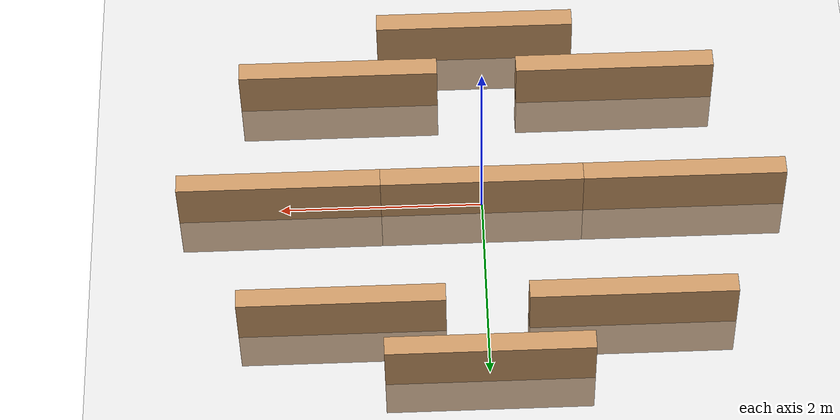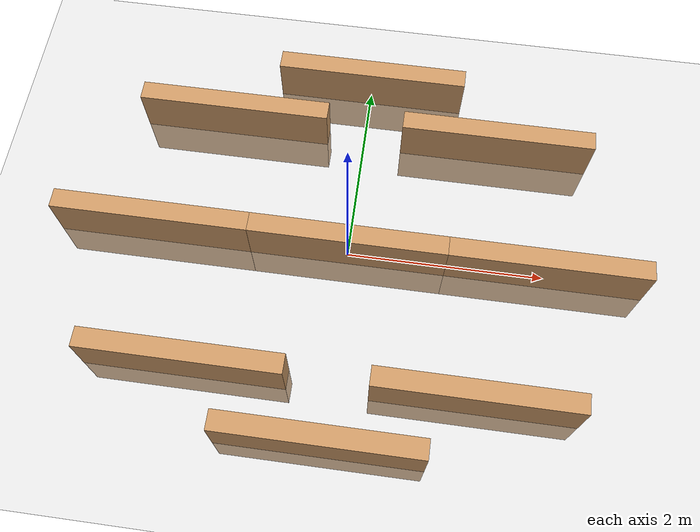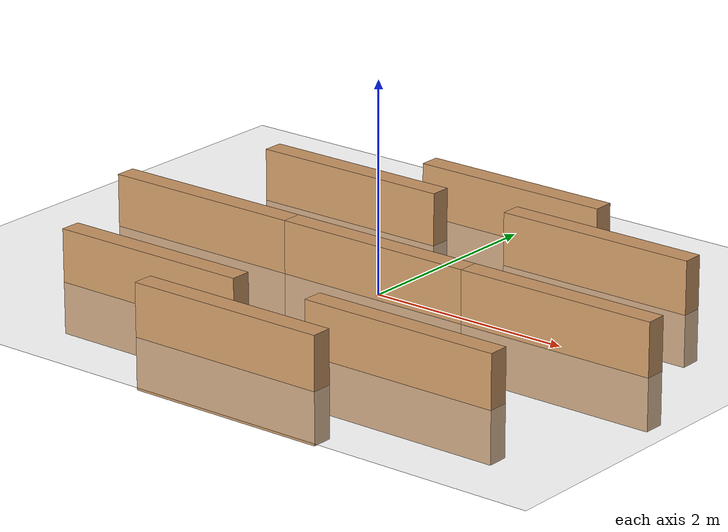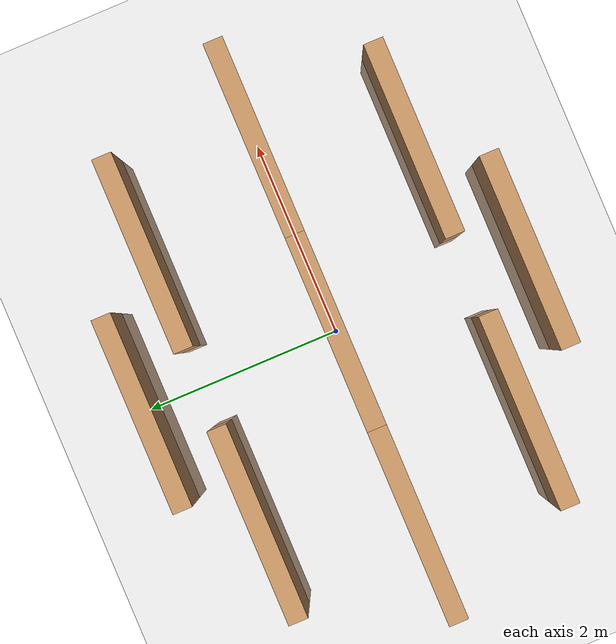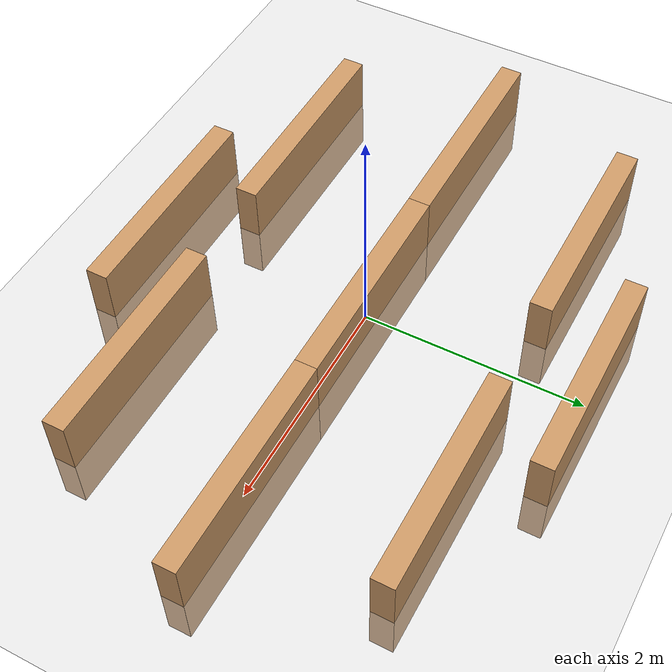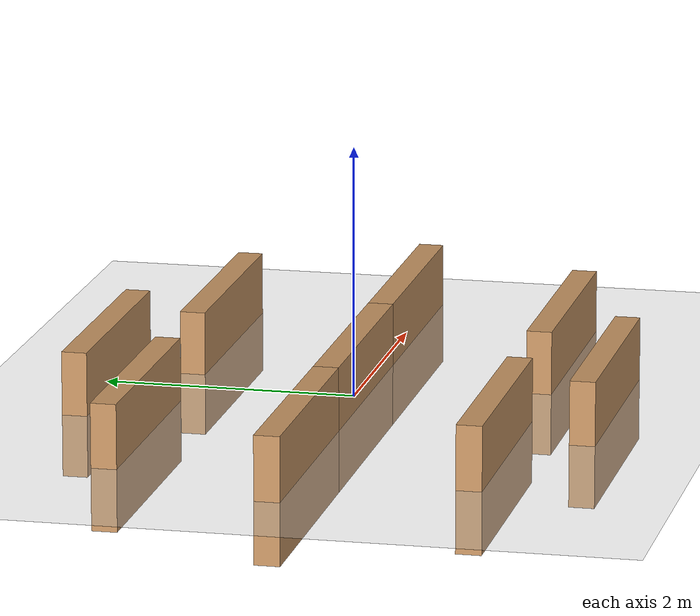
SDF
<?xml version="1.0"?>
<sdf version="1.6">
    <world name="default">
      <include>
        <uri>model://ground_plane</uri>
      </include>
      <include>
      <uri>../models/simple_diff_bot/model.sdf</uri>
      <name>simple_diff_bot</name>
      <pose>0 0 0 0 0 0</pose>
    </include>
    <!-- Surrounding walls -->
    <include>
      <uri>../models/wall/model.sdf</uri>
      <name>wall_north</name>
      <pose>0 2 0 0 0 0</pose>
    </include>
    <include>
      <uri>../models/wall/model.sdf</uri>
      <name>wall_northeast</name>
      <pose>1.4 1.4 0 0 0 0</pose>
    </include>
    <include>
      <uri>../models/wall/model.sdf</uri>
      <name>wall_east</name>
      <pose>2 0 0 0 0 0</pose>
    </include>
    <include>
      <uri>../models/wall/model.sdf</uri>
      <name>wall_southeast</name>
      <pose>1.4 -1.4 0 0 0 0</pose>
    </include>
    <include>
      <uri>../models/wall/model.sdf</uri>
      <name>wall_south</name>
      <pose>0 -2 0 0 0 0</pose>
    </include>
    <include>
      <uri>../models/wall/model.sdf</uri>
      <name>wall_southwest</name>
      <pose>-1.4 -1.4 0 0 0 0</pose>
    </include>
    <include>
      <uri>../models/wall/model.sdf</uri>
      <name>wall_west</name>
      <pose>-2 0 0 0 0 0</pose>
    </include>
    <include>
      <uri>../models/wall/model.sdf</uri>
      <name>wall_northwest</name>
      <pose>-1.4 1.4 0 0 0 0</pose>
    </include>
  </world>
</sdf>

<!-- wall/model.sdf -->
<sdf version="1.6">
  <model name="wall">
    <static>true</static>
    <link name="link">
      <collision name="collision">
        <geometry>
          <box>
            <size>2 0.1 1</size>
          </box>
        </geometry>
      </collision>
      <visual name="visual">
        <geometry>
          <box>
            <size>2 0.2 1</size>
          </box>
        </geometry>
        <material>
          <ambient>0.8 0.6 0.4 1</ambient>
          <diffuse>0.8 0.6 0.4 1</diffuse>
        </material>
      </visual>
    </link>
  </model>
</sdf>
